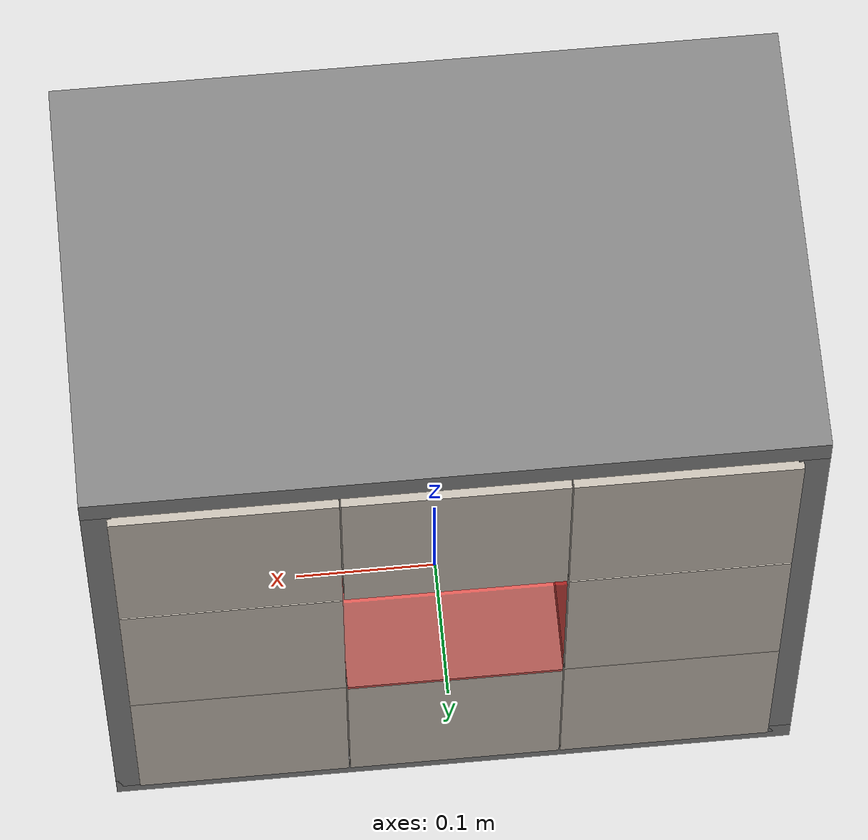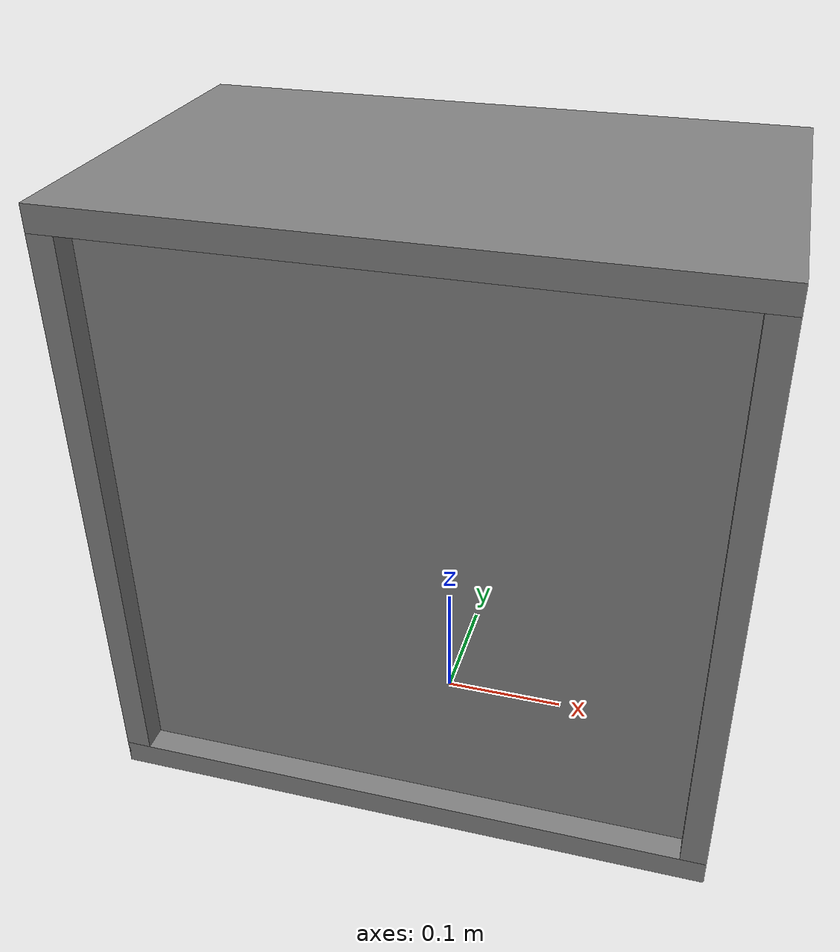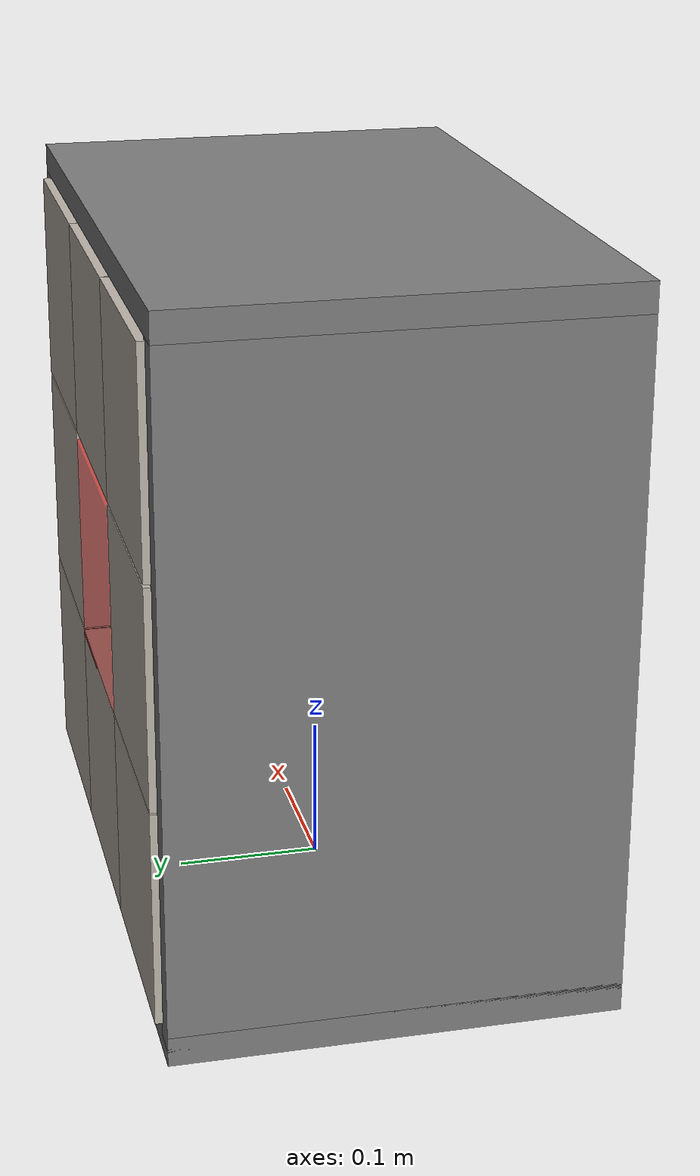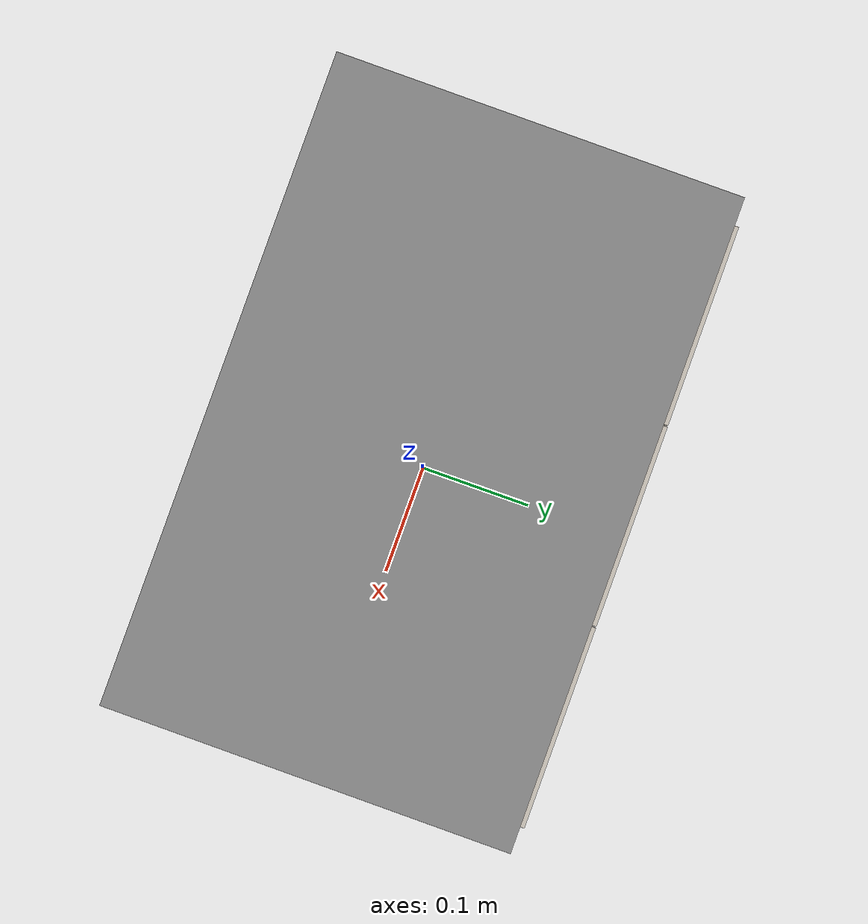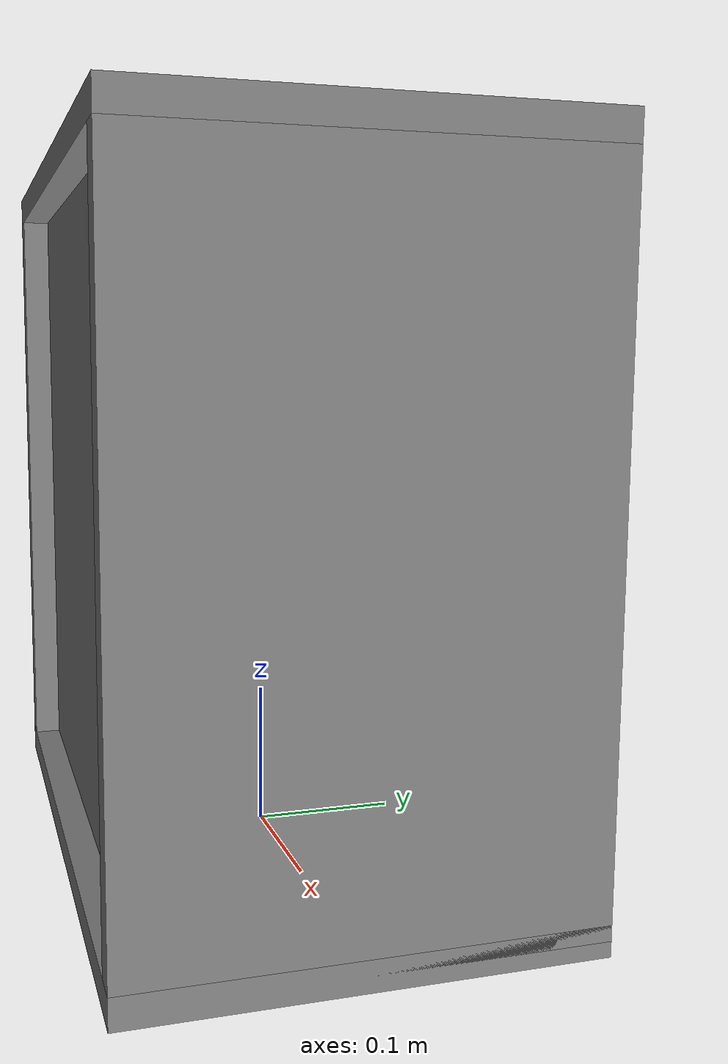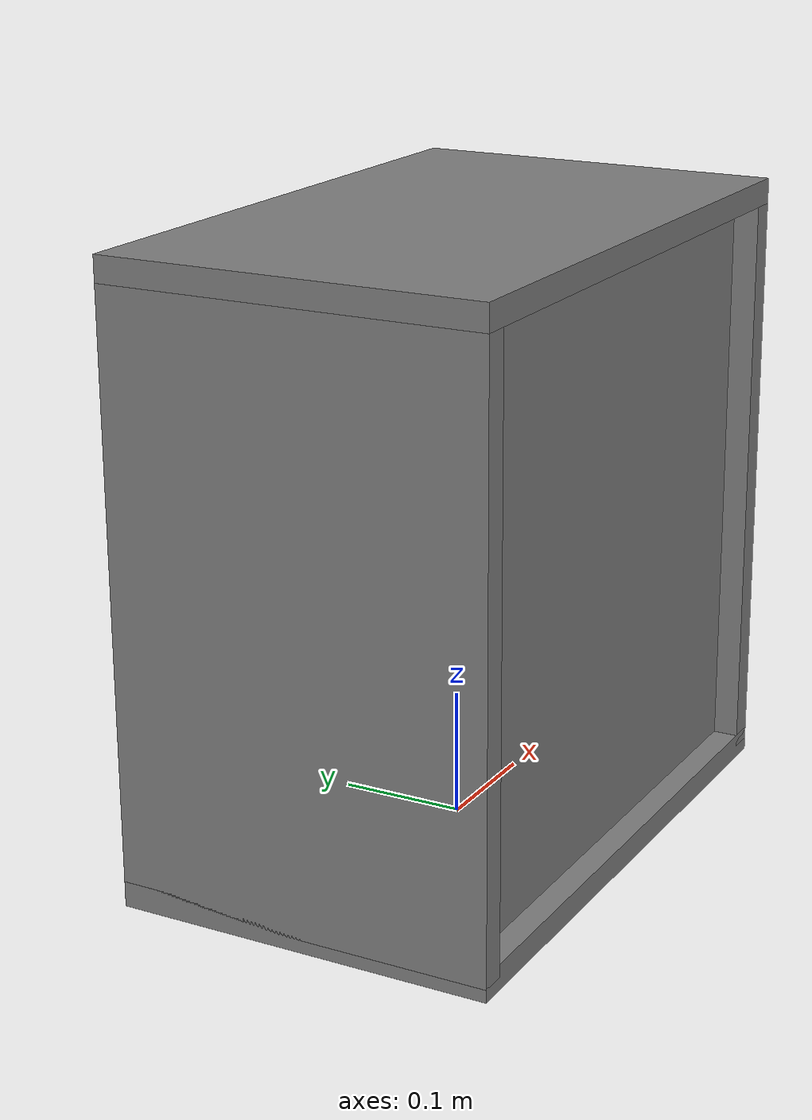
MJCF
<!--TODO: Add domain randomization for different target locations using visual geometry group 1-->

<mujoco model="container_with_tetrapacks">
  <asset>
    <texture file="../textures/milk.png" name="tex-milk" type="2d"/>
    <material name="milk" reflectance="0.5" texrepeat="10 10" texture="tex-milk" texuniform="true"/>
  </asset>
  <worldbody>
    <body>
      <body name="object">
        <!--Container walls-->
        <body name="bottom_wall" pos="0. 0. 0." quat="0. 0. 0.707 0.707">
          <geom size="0.24 0.01 0.15" type="box" friction="1 1 1" contype="1" conaffinity="0" group="0" condim="4"/>
        </body>
        <body name="right_side_wall" pos="-0.23 0. 0.23" quat="0. 0. 0.707 0.707">
          <geom size="0.01 0.23 .15" type="box" friction="1 1 1" contype="1" conaffinity="0" group="0" condim="4"/>
        </body>
        <body name="left_side_wall" pos="0.23 0. 0.23" quat="0. 0. 0.707 0.707">
          <geom size="0.01 0.23 .15" type="box" friction="1 1 1" contype="1" conaffinity="0" group="0" condim="4"/>
        </body>
        <body name="backend_wall" pos="0. -0.12 0.23" quat="0. 0. 0.707 0.707">
          <geom size="0.23 0.23 .01" type="box" friction="1 1 1" contype="1" conaffinity="0" group="0" condim="4"/>
        </body>
        <body name="top_wall" pos="0. 0. 0.47" quat="0. 0. 0.707 0.707">
          <geom size="0.24 0.01 .15" type="box" friction="1 1 1" contype="1" conaffinity="0" group="0" condim="4"/>
        </body>
        <!--Container objects-->
        <body name="tetrapack_1" pos="0. 0.015 0.085" quat="0. 0. 0.707 0.707">
          <geom size="0.074 0.074 0.14" type="box" margin=".003" material="milk" contype="1" conaffinity="0" friction="1 1 1" group="0" condim="4"/>
        </body>
        <body name="tetrapack_2" pos="0.149 0.015 0.085" quat="0. 0. 0.707 0.707">
          <geom size="0.074 0.074 0.14" type="box" margin=".003" material="milk" contype="1" conaffinity="0"  friction="1 1 1" group="0" condim="4"/>
        </body>
        <body name="tetrapack_3" pos="-0.149 0.015 0.085" quat="0. 0. 0.707 0.707">
          <geom size="0.074 0.074 0.14" type="box" margin=".003" material="milk" contype="1" conaffinity="0"  friction="1 1 1" group="0" condim="4"/>
        </body>
        <!--Hard coded target location of tetrapack 4 as visual `group=1`-->
        <body name="tetrapack_4" pos="0. 0.015 0.23" quat="0. 0. 0.707 0.707">
          <site name="tetrapack_4" size="0.074 0.074 0.14" rgba="1 0 0 0.5" type="box" group="1"/>
        </body>
        <body name="tetrapack_5" pos="0.149 0.015 0.234" quat="0. 0. 0.707 0.707">
          <geom size="0.074 0.074 0.14" type="box" margin=".003" material="milk" contype="1" conaffinity="0" friction="1 1 1" group="0" condim="4"/>
        </body>
        <body name="tetrapack_6" pos="-0.149 0.015 0.234" quat="0. 0. 0.707 0.707">
          <geom size="0.074 0.074 0.14" type="box" margin=".003" material="milk" contype="1" conaffinity="0" friction="1 1 1" group="0" condim="4"/>
        </body>
        <body name="tetrapack_7" pos="0. 0.015 0.384" quat="0. 0. 0.707 0.707">
          <geom size="0.074 0.074 0.14" type="box" margin=".003" material="milk" contype="1" conaffinity="0" friction="1 1 1" group="0" condim="4"/>
        </body>
        <body name="tetrapack_8" pos="0.149 0.015 0.384" quat="0. 0. 0.707 0.707">
          <geom size="0.074 0.074 0.14" type="box" margin=".003" material="milk" contype="1" conaffinity="0" friction="1 1 1" group="0" condim="4"/>
        </body>
        <body name="tetrapack_9" pos="-0.149 0.015 0.384" quat="0. 0. 0.707 0.707">
          <geom size="0.074 0.074 0.14" type="box" margin=".003" material="milk" contype="1" conaffinity="0" friction="1 1 1" group="0" condim="4"/>
        </body>
      </body>
      <site rgba="0 0 0 0" size="0.01" pos="0. 0.  0." name="bottom_site"/>
      <site rgba="0 0 0 0" size="0.01" pos="0. 0. 0.47" name="top_site"/>
      <site rgba="0 0 0 0" size="0.05" pos="0.05 0.05 0" name="horizontal_radius_site"/>
    </body>
  </worldbody>
</mujoco>
